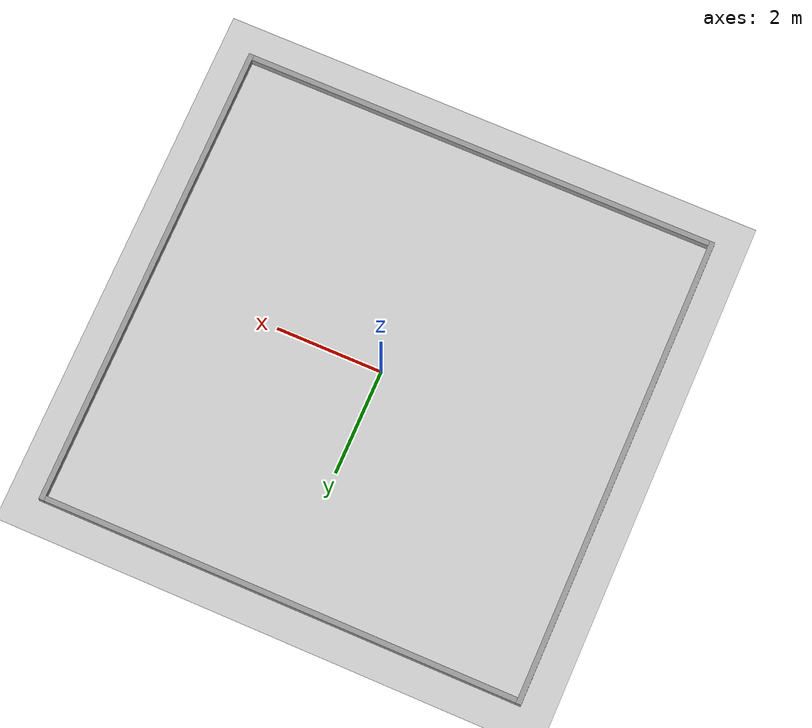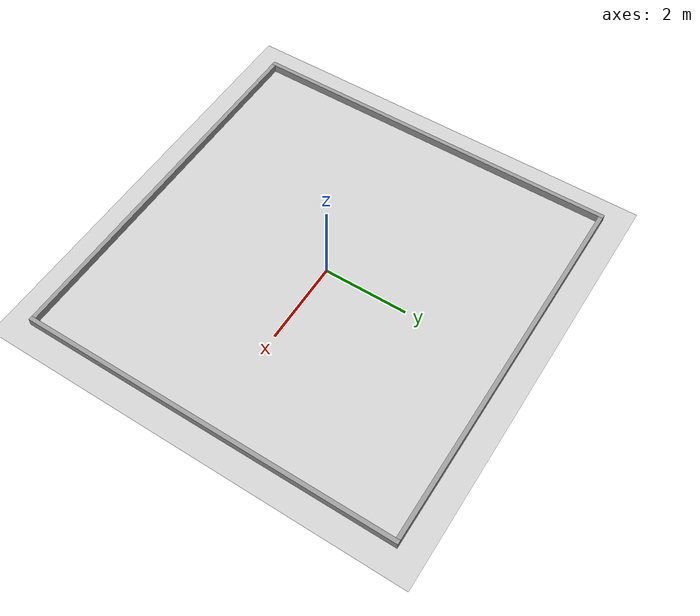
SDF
<sdf version="1.7">
 <world name="default">
  <plugin name="gazebo_ros_state" filename="libgazebo_ros_state.so"/>
  <light name="sun" type="directional">
   <pose>0 0 10 0 -0 0</pose>
   <diffuse>0.8 0.8 0.8 1</diffuse>
   <specular>0.2 0.2 0.2 1</specular>
   <attenuation>
    <range>1000</range>
    <constant>0.9</constant>
    <linear>0.01</linear>
    <quadratic>0.001</quadratic>
   </attenuation>
   <direction>-0.5 0.1 -0.9</direction>
   <spot><inner_angle>0</inner_angle><outer_angle>0</outer_angle><falloff>0</falloff></spot>
  </light>
  <model name="ground_plane">
   <static>1</static>
   <link name="link">
    <collision name="collision">
     <geometry><plane><normal>0 0 1</normal><size>100 100</size></plane></geometry>
     <surface>
      <contact><collide_bitmask>65535</collide_bitmask></contact>
      <friction><ode><mu>100</mu><mu2>50</mu2></ode></friction>
     </surface>
    </collision>
    <visual name="visual">
     <cast_shadows>0</cast_shadows>
     <geometry><plane><normal>0 0 1</normal><size>9 9</size></plane></geometry>
     <material>
      <script>
       <uri>file:///root/ros2_ws/src/trace_car/meshes/ground/ground.material</uri>
       <name>GroundTrack</name>
      </script>
     </material>
    </visual>
   </link>
  </model>
  <model name="block_wall">
   <static>1</static>
   <link name="Wall_1">
    <collision name="Wall_1_Collision"><geometry><box><size>9 0.1 0.2</size></box></geometry></collision>
    <visual name="Wall_1_Visual">
     <geometry><box><size>9 0.1 0.2</size></box></geometry>
     <material>
      <script><uri>file://media/materials/scripts/gazebo.material</uri><name>Gazebo/Grey</name></script>
      <ambient>1 1 1 1</ambient>
     </material>
    </visual>
    <pose>4.5 0 0.1 0 0 1.5708</pose>
   </link>
   <link name="Wall_2">
    <collision name="Wall_2_Collision"><geometry><box><size>9 0.1 0.2</size></box></geometry></collision>
    <visual name="Wall_2_Visual">
     <geometry><box><size>9 0.1 0.2</size></box></geometry>
     <material>
      <script><uri>file://media/materials/scripts/gazebo.material</uri><name>Gazebo/Grey</name></script>
      <ambient>1 1 1 1</ambient>
     </material>
    </visual>
    <pose>-4.5 0 0.1 0 0 1.5708</pose>
   </link>
   <link name="Wall_3">
    <collision name="Wall_3_Collision"><geometry><box><size>8.9 0.1 0.2</size></box></geometry></collision>
    <visual name="Wall_3_Visual">
     <geometry><box><size>8.9 0.1 0.2</size></box></geometry>
     <material>
      <script><uri>file://media/materials/scripts/gazebo.material</uri><name>Gazebo/Grey</name></script>
      <ambient>1 1 1 1</ambient>
     </material>
    </visual>
    <pose>0 4.45 0.1 0 0 0</pose>
   </link>
   <link name="Wall_4">
    <collision name="Wall_4_Collision"><geometry><box><size>8.9 0.1 0.2</size></box></geometry></collision>
    <visual name="Wall_4_Visual">
     <geometry><box><size>8.9 0.1 0.2</size></box></geometry>
     <material>
      <script><uri>file://media/materials/scripts/gazebo.material</uri><name>Gazebo/Grey</name></script>
      <ambient>1 1 1 1</ambient>
     </material>
    </visual>
    <pose>0 -4.45 0.1 0 0 0</pose>
   </link>
  </model>
  <gravity>0 0 -9.8</gravity>
  <magnetic_field>6e-06 2.3e-05 -4.2e-05</magnetic_field>
  <atmosphere type="adiabatic"/>
  <physics name="default_physics" default="0" type="ode">
   <max_step_size>0.001</max_step_size>
   <real_time_factor>1</real_time_factor>
   <real_time_update_rate>1000</real_time_update_rate>
  </physics>
  <scene><ambient>0.4 0.4 0.4 1</ambient><background>0.7 0.7 0.7 1</background><shadows>1</shadows></scene>
  <audio><device>default</device></audio>
  <spherical_coordinates>
   <surface_model>EARTH_WGS84</surface_model>
   <latitude_deg>0</latitude_deg>
   <longitude_deg>0</longitude_deg>
   <elevation>0</elevation>
   <heading_deg>0</heading_deg>
  </spherical_coordinates>
 </world>
</sdf>
